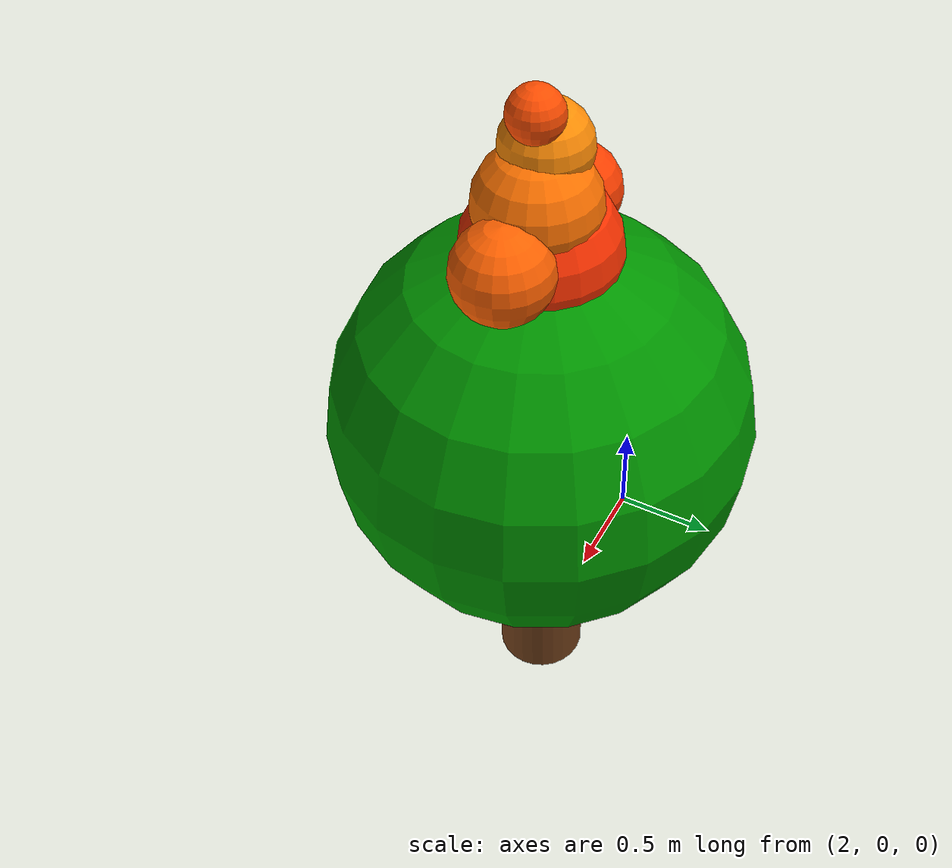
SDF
<sdf version="1.9">
 <world name="beer_demo_world">
  <light name="sun" type="directional">
   <pose>0 0 10 0 0 0</pose>
   <diffuse>1 1 1 1</diffuse>
   <specular>0.1 0.1 0.1 1</specular>
   <direction>0 0 -1</direction>
  </light>
  <include><uri>model://tree_burning</uri><pose>3.0 0 0 0 0 0</pose></include>
  <scene><ambient>0.4 0.4 0.4 1</ambient></scene>
 </world>
</sdf>

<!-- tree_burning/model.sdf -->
<sdf version="1.9">

  <model name="tree_burning">

    <static>false</static>

    <link name="trunk">

      <pose>0 0 0 0 0 0</pose>

      <!-- TREE TRUNK                                             -->

      <visual name="trunk_visual">

        <geometry>
          <cylinder>
            <radius>0.2</radius>
            <length>1.5</length>
          </cylinder>
        </geometry>

        <pose>0 0 0.75 0 0 0</pose>

        <material>
          <ambient>0.35 0.20 0.08 1</ambient>
          <diffuse>0.45 0.25 0.10 1</diffuse>
        </material>

      </visual>

      <!-- GREEN TREE CANOPY                                      -->
      <!-- Centre = Z 1.6 m                                      -->
      <!-- Radius = 0.9 m                                        -->
      <!-- Top of canopy = Z 2.5 m                               -->

      <visual name="leaves_visual">

        <geometry>
          <sphere>
            <radius>0.9</radius>
          </sphere>
        </geometry>

        <pose>0 0 1.6 0 0 0</pose>

        <material>
          <ambient>0.0 0.40 0.0 1</ambient>
          <diffuse>0.0 0.58 0.0 1</diffuse>
        </material>

      </visual>

      <!-- B.E.E.R. FIRE VISUALS                                  -->
      <!-- Flames deliberately sit above / around Z = 2.5 m,     -->
      <!-- which is the top of the green canopy.                  -->
      <!-- These visuals have NO collision and therefore do not   -->
      <!-- alter LiDAR or fire-detection behaviour.               -->

      <!-- B.E.E.R. FIRE VISUALS - Gazebo-friendly sphere flames -->

      <!-- Bottom orange fire mass: overlaps canopy top slightly -->
      <visual name="flame_base">
        <pose>0 0 2.48 0 0 0</pose>
        <geometry>
          <sphere>
            <radius>0.32</radius>
          </sphere>
        </geometry>
        <material>
          <ambient>1.0 0.12 0.0 1</ambient>
          <diffuse>1.0 0.20 0.0 1</diffuse>
          <emissive>0.65 0.08 0.0 1</emissive>
        </material>
      </visual>

      <!-- Main yellow/orange flame -->
      <visual name="flame_middle">
        <pose>0.03 0 2.70 0 0 0</pose>
        <geometry>
          <sphere>
            <radius>0.25</radius>
          </sphere>
        </geometry>
        <material>
          <ambient>1.0 0.40 0.0 1</ambient>
          <diffuse>1.0 0.45 0.0 1</diffuse>
          <emissive>0.70 0.20 0.0 1</emissive>
        </material>
      </visual>

      <!-- Upper flame -->
      <visual name="flame_upper">
        <pose>-0.04 0 2.91 0 0 0</pose>
        <geometry>
          <sphere>
            <radius>0.18</radius>
          </sphere>
        </geometry>
        <material>
          <ambient>1.0 0.65 0.05 1</ambient>
          <diffuse>1.0 0.55 0.02 1</diffuse>
          <emissive>0.75 0.30 0.0 1</emissive>
        </material>
      </visual>

      <!-- Flame tip -->
      <visual name="flame_tip">
        <pose>0.04 0 3.08 0 0 0</pose>
        <geometry>
          <sphere>
            <radius>0.11</radius>
          </sphere>
        </geometry>
        <material>
          <ambient>1.0 0.25 0.0 1</ambient>
          <diffuse>1.0 0.30 0.0 1</diffuse>
          <emissive>0.65 0.10 0.0 1</emissive>
        </material>
      </visual>

      <!-- Left crown fire -->
      <visual name="flame_left">
        <pose>-0.28 0 2.57 0 0 0</pose>
        <geometry>
          <sphere>
            <radius>0.19</radius>
          </sphere>
        </geometry>
        <material>
          <ambient>1.0 0.18 0.0 1</ambient>
          <diffuse>1.0 0.25 0.0 1</diffuse>
          <emissive>0.65 0.08 0.0 1</emissive>
        </material>
      </visual>

      <!-- Right crown fire -->
      <visual name="flame_right">
        <pose>0.30 0 2.58 0 0 0</pose>
        <geometry>
          <sphere>
            <radius>0.20</radius>
          </sphere>
        </geometry>
        <material>
          <ambient>1.0 0.35 0.0 1</ambient>
          <diffuse>1.0 0.38 0.0 1</diffuse>
          <emissive>0.68 0.16 0.0 1</emissive>
        </material>
      </visual>

      <!-- COLLISION GEOMETRY                                     -->
      <!-- Keep unchanged: the real LiDAR uses this.              -->

      <collision name="trunk_collision">

        <geometry>
          <cylinder>
            <radius>0.6</radius>
            <length>2.0</length>
          </cylinder>
        </geometry>

        <pose>0 0 1.0 0 0 0</pose>

      </collision>

      <collision name="leaves_collision">

        <geometry>
          <sphere>
            <radius>0.9</radius>
          </sphere>
        </geometry>

        <pose>0 0 1.6 0 0 0</pose>

      </collision>

      <!-- PHYSICS                                                -->

      <inertial>
        <mass>5.0</mass>
      </inertial>

      <!-- Nominal simulated burning temperature.
           The stakeholder demo currently uses the deterministic
           synthetic thermal pipeline for reliable detection. -->

      <temperature>600</temperature>

    </link>

    <!-- Existing thermal plugin attempts retained.
         They do not control the current synthetic stakeholder demo. -->

    <plugin
      filename="libignition-gazebo-thermal-system.so"
      name="ignition::gazebo::systems::Thermal">

      <temperature>600</temperature>

    </plugin>

    <plugin
      filename="ignition-gazebo-thermal-system"
      name="ignition::gazebo::systems::Thermal">

      <temperature>600</temperature>

    </plugin>

  </model>

</sdf>
